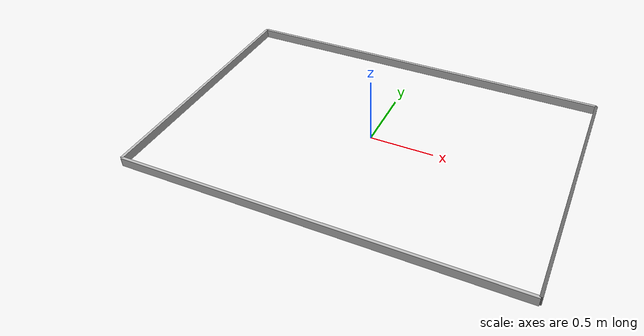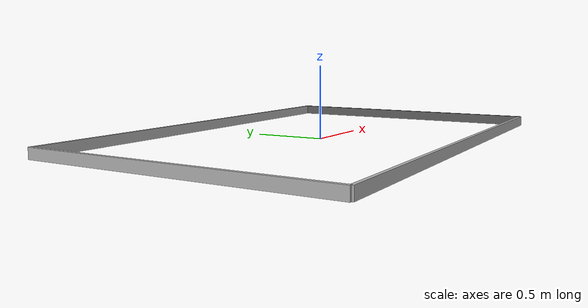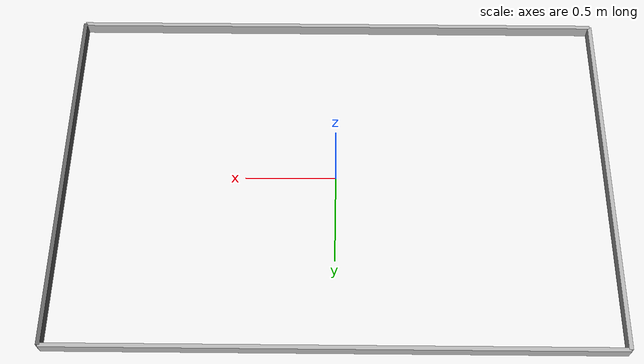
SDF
<?xml version="1.0" ?>
<sdf version="1.6">
  <model name="eurobot_cositas">
    <static>true</static>

    <!-- Parámetros -->
    <!-- campo: 3.0 m x 2.0 m -->
    <!-- grosor: 0.022 m, altura: 0.07 m -->
    <!-- las paredes están colocadas en el exterior del rectángulo centrado en 0,0 -->

    <!-- Pared - lado +X (derecha) -->
    <link name="wall_pos_x">
      <pose>1.5 0 0.035 0 0 0</pose> <!-- x, y, z (z = alto/2) -->
      <collision name="col">
        <geometry>
          <box>
            <size>0.022 2.00 0.07</size>
          </box>
        </geometry>
      </collision>
      <visual name="vis">
        <geometry>
          <box>
            <size>0.022 2.00 0.07</size>
          </box>
        </geometry>
        <material>
          <ambient>0.2 0.2 0.2 1</ambient>
          <diffuse>0.4 0.4 0.4 1</diffuse>
        </material>
      </visual>
    </link>

    <!-- Pared - lado -X (izquierda) -->
    <link name="wall_neg_x">
      <pose>-1.5 0 0.035 0 0 0</pose>
      <collision name="col">
        <geometry>
          <box>
            <size>0.022 2.00 0.07</size>
          </box>
        </geometry>
      </collision>
      <visual name="vis">
        <geometry>
          <box>
            <size>0.022 2.00 0.07</size>
          </box>
        </geometry>
      </visual>
    </link>

    <!-- Pared - lado +Y (frontal/top) -->
    <link name="wall_pos_y">
      <pose>0 1.0 0.035 0 0 0</pose>
      <collision name="col">
        <geometry>
          <box>
            <size>3.00 0.022 0.07</size>
          </box>
        </geometry>
      </collision>
      <visual name="vis">
        <geometry>
          <box>
            <size>3.00 0.022 0.07</size>
          </box>
        </geometry>
      </visual>
    </link>

    <!-- Pared - lado -Y (trasera/bottom) -->
    <link name="wall_neg_y">
      <pose>0 -1.0 0.035 0 0 0</pose>
      <collision name="col">
        <geometry>
          <box>
            <size>3.00 0.022 0.07</size>
          </box>
        </geometry>
      </collision>
      <visual name="vis">
        <geometry>
          <box>
            <size>3.00 0.022 0.07</size>
          </box>
        </geometry>
      </visual>
    </link>

  </model>
</sdf>
